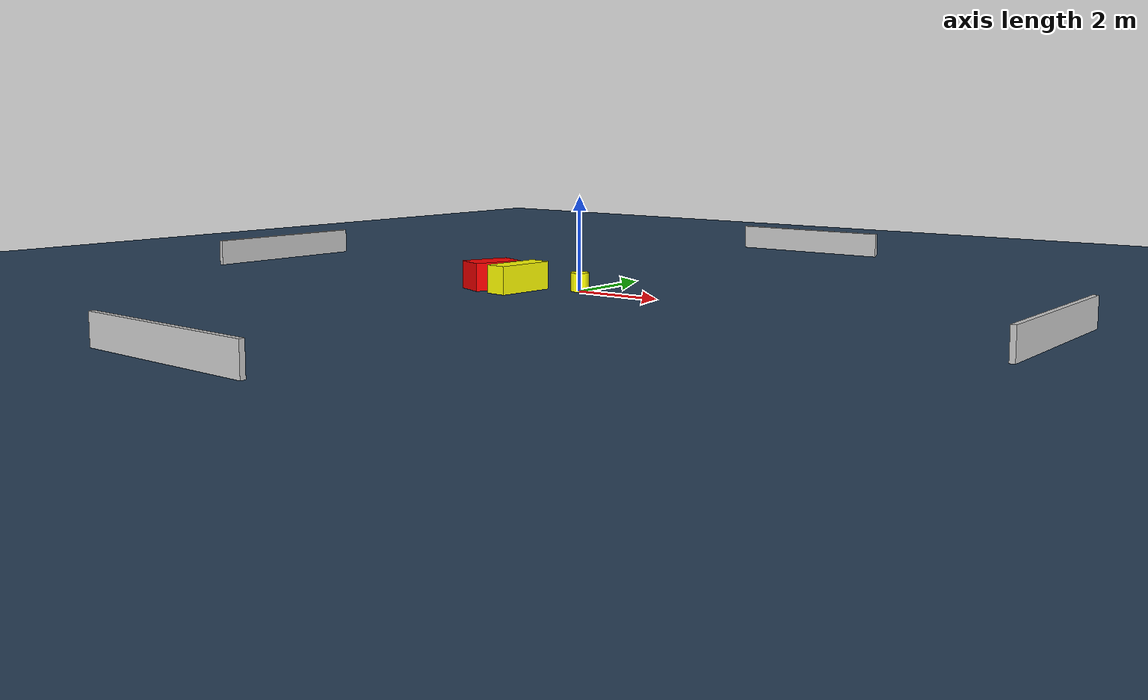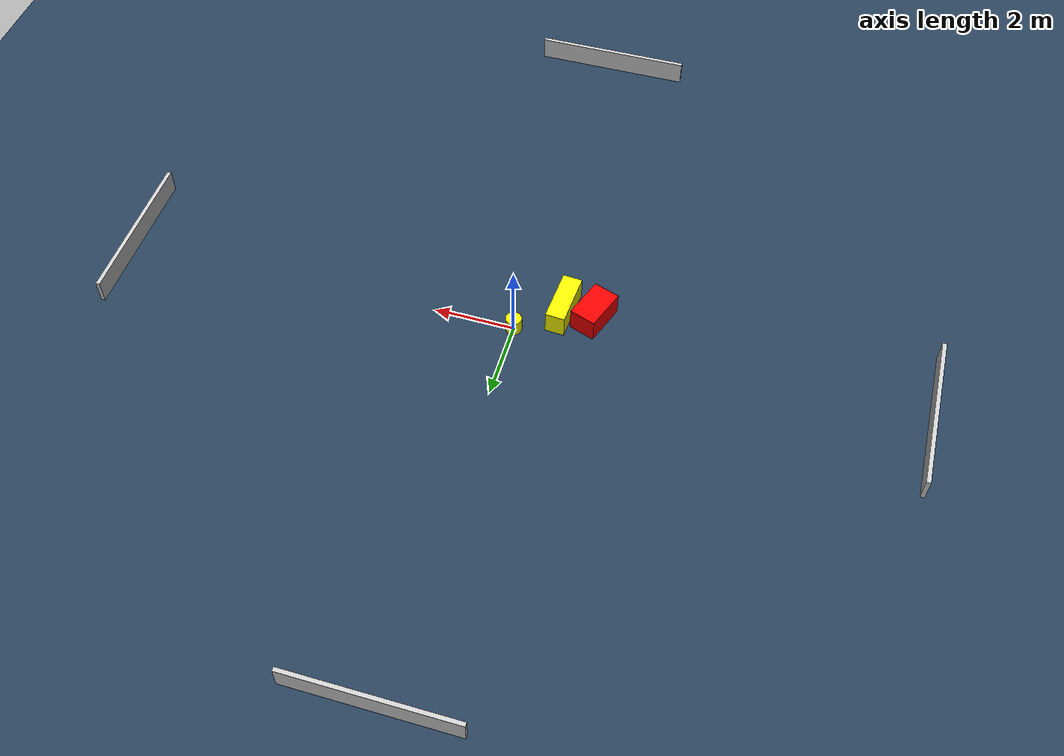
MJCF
<?xml version="1.0" ?>
<mujoco model="generated_environment">
  <option timestep="0.01" integrator="RK4" cone="elliptic"/>
  <default>
    <geom density="1"/>
  </default>
  <asset>
    <texture builtin="gradient" height="3072" name="skybox" rgb1="0.3 0.5 0.7" rgb2="0 0 0" type="skybox" width="512"/>
    <texture builtin="checker" height="300" name="groundplane" rgb1="0.2 0.3 0.4" rgb2="0.1 0.2 0.3" type="2d" width="300"/>
    <material name="groundplane" reflectance="0.2" texrepeat="5 5" texture="groundplane"/>
  </asset>
  <worldbody>
    <light dir="0 0 -1" directional="true" pos="0 0 1.5"/>
    <geom condim="3" friction="0.5 0.005 0.001" material="groundplane" name="floor" pos="0 0 0" size="0 0 0.05" type="plane"/>
    <body name="walls">
      <geom name="wall_1" condim="4" pos="-10.0 0.0 0.3" rgba="0.800000011920929 0.800000011920929 0.800000011920929 1.0" size="0.05 2.0 0.3" type="box"/>
      <geom name="wall_2" condim="4" pos="10.0 0.0 0.3" rgba="0.800000011920929 0.800000011920929 0.800000011920929 1.0" size="0.05 2.0 0.3" type="box"/>
      <geom name="wall_3" condim="4" pos="0.0 -10.0 0.3" rgba="0.800000011920929 0.800000011920929 0.800000011920929 1.0" size="2.0 0.05 0.3" type="box"/>
      <geom name="wall_4" condim="4" pos="0.0 10.0 0.3" rgba="0.800000011920929 0.800000011920929 0.800000011920929 1.0" size="2.0 0.05 0.3" type="box"/>
    </body>
    <body name="robot">
      <joint name="joint_x" type="slide" pos="0 0 0" axis="1 0 0"/>
      <joint name="joint_y" type="slide" pos="0 0 0" axis="0 1 0"/>
      <geom name="robot" type="cylinder" pos="0.0 0.0 0.2" size="0.2 0.2 0.0" mass="5.0" friction="1.0 0.005 0.0001" condim="4" rgba="1.0 1.0 0.0 1.0"/>
    </body>
    <body name="obstacle_1_movable">
      <geom name="obstacle_1_movable" condim="4" pos="-1.02763253566138 -0.8212068951718517 0.3" euler="0 0 355.8092851512853" friction="0.0 0.005 0.001" rgba="1.0 1.0 0.0 1.0" size="0.24098078215588548 0.6650166314334495 0.3" type="box" mass="0.1"/>
      <joint type="free"/>
    </body>
    <body name="obstacle_2_static">
      <geom name="obstacle_2_static" condim="4" pos="-1.790620127695782 -0.8377334575208606 0.3" euler="0 0 250.25858032007585" friction="0.0 0.005 0.001" rgba="1.0 0.0 0.0 1.0" size="0.5336302182549566 0.3353329110515798 0.3" type="box"/>
    </body>
  </worldbody>
  <actuator>
    <motor name="actuator_x" joint="joint_x" gear="1" ctrlrange="-1 1"/>
    <motor name="actuator_y" joint="joint_y" gear="1" ctrlrange="-1 1"/>
  </actuator>
</mujoco>
